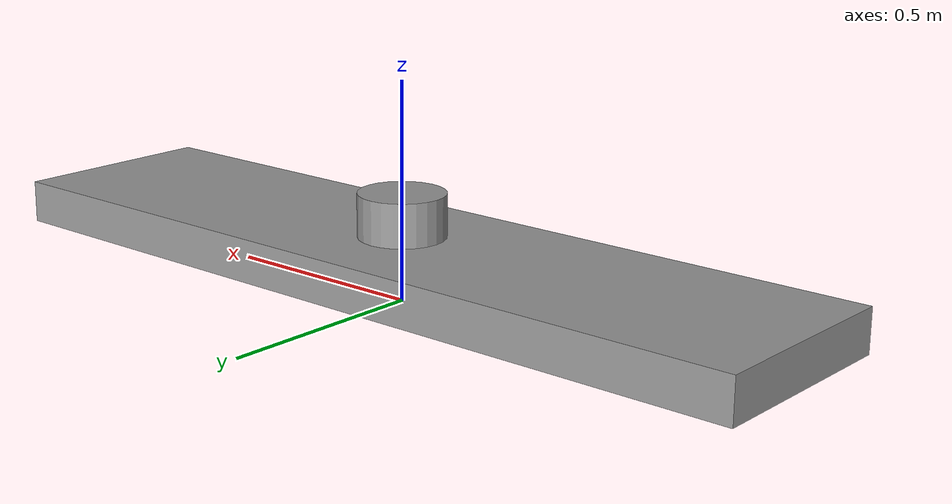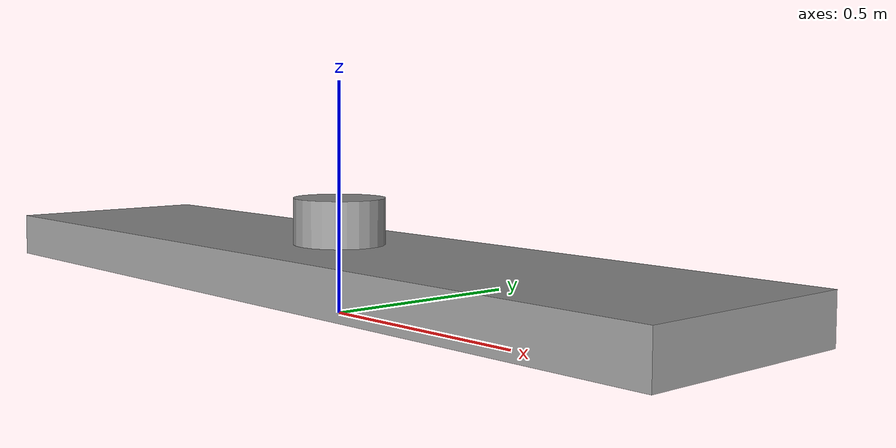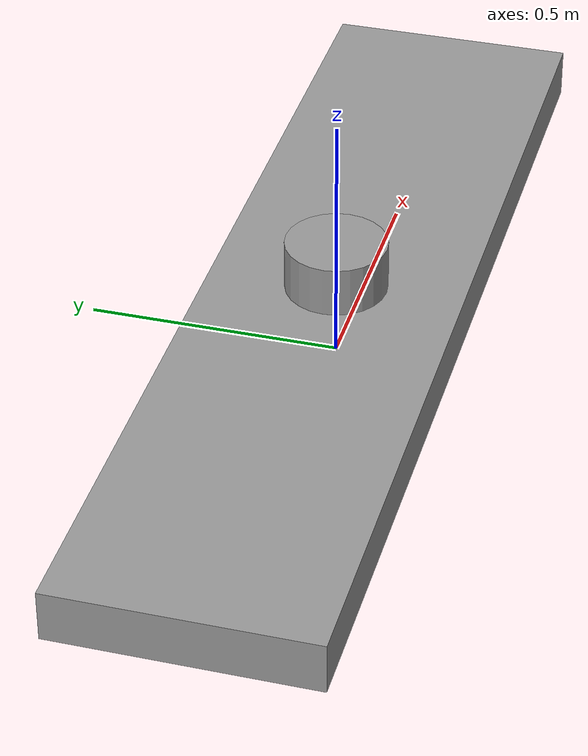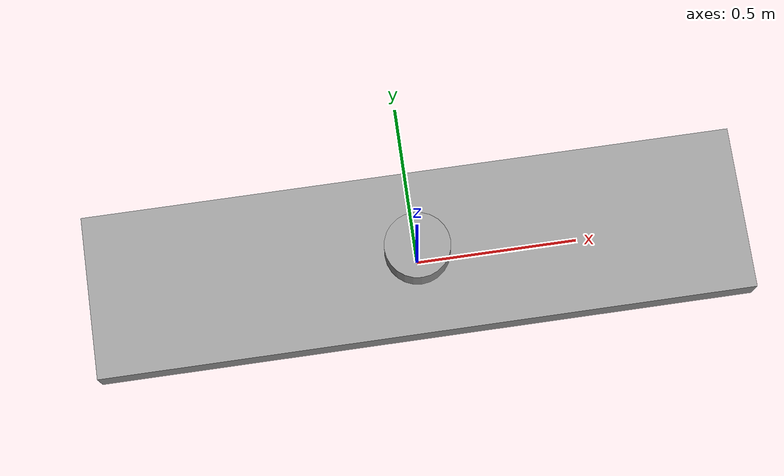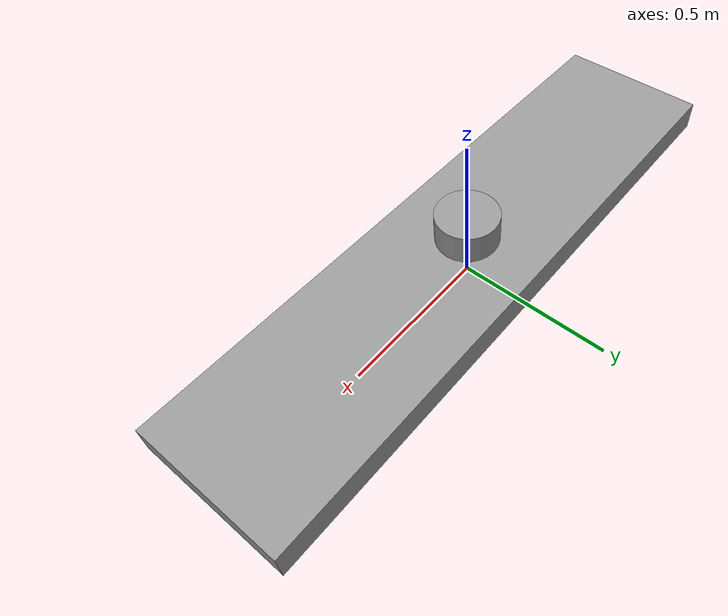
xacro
<?xml version="1.0"?>
<robot xmlns:xacro="http://www.ros.org/wiki/xacro" name="conveyor_belt">
  <link name="world1"/>

  <joint name="world_to_conveyor" type="fixed">
    <parent link="world1"/>
    <child link="conv_base_link"/>
    <origin xyz="0 0 0.1" rpy="0 0 0"/>
  </joint>

  <!-- Conveyor Belt Base -->
  <link name="conv_base_link">
    <visual>
      <origin xyz="0 0 0" rpy="0 0 0"/>
      <geometry>
        <box size="2.0 0.5 0.1"/>
      </geometry>
      <material name="gray"/>
    </visual>
    <collision>
      <origin xyz="0 0 0" rpy="0 0 0"/>
      <geometry>
        <box size="2.0 0.5 0.1"/>
      </geometry>
    </collision>
    <inertial>
      <mass value="50.0"/>
      <inertia ixx="0.1" ixy="0.0" ixz="0.0" iyy="0.1" iyz="0.0" izz="0.1"/>
    </inertial>
  </link>

  <!-- Conveyor Belt Motor Joint -->
  <joint name="conveyor_motor" type="revolute">
    <parent link="conv_base_link"/>
    <child link="conveyor_motor_link"/>
    <origin xyz="0 0 0.1" rpy="0 0 0"/>
    <axis xyz="0 0 1"/>
    <limit effort="10" velocity="0.5" lower="0" upper="6.28"/>
    <dynamics damping="0.1" friction="0.1"/>
  </joint>

  <!-- Conveyor Motor Link -->
  <link name="conveyor_motor_link">
    <visual>
      <origin xyz="0 0 0" rpy="0 0 0"/>
      <geometry>
        <cylinder radius="0.1" length="0.1"/>
      </geometry>
      <material name="gray"/>
    </visual>
    <collision>
      <origin xyz="0 0 0" rpy="0 0 0"/>
      <geometry>
        <cylinder radius="0.1" length="0.1"/>
      </geometry>
    </collision>
    <inertial>
      <mass value="5.0"/>
      <inertia ixx="0.01" ixy="0.0" ixz="0.0" iyy="0.01" iyz="0.0" izz="0.01"/>
    </inertial>
  </link>

  <ros2_control name="ConveyorHardware" type="system">
    <hardware>
      <plugin>fake_components/GenericSystem</plugin>
      <param name="update_rate">50</param>
      <param name="joint_command_interface">velocity</param>
      <param name="joint_state_interface">position</param>
    </hardware>

    <joint name="conveyor_motor">
      <command_interface name="velocity"/>
      <state_interface name="position"/>
      <state_interface name="velocity"/>
    </joint>
  </ros2_control>

</robot>
